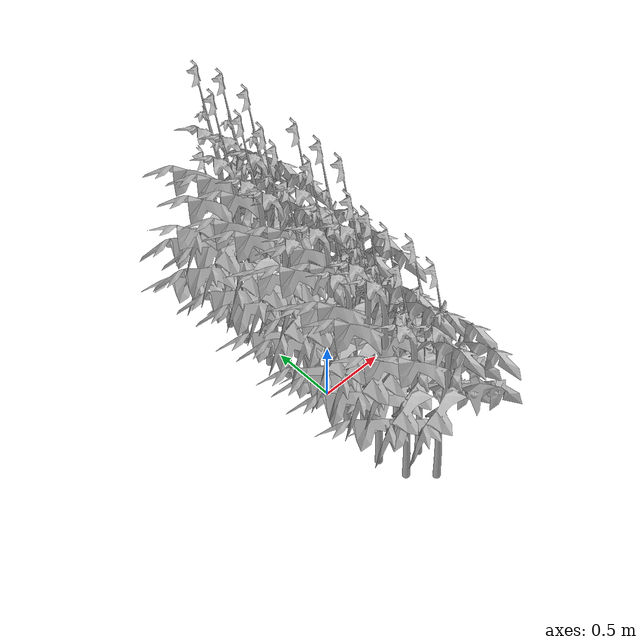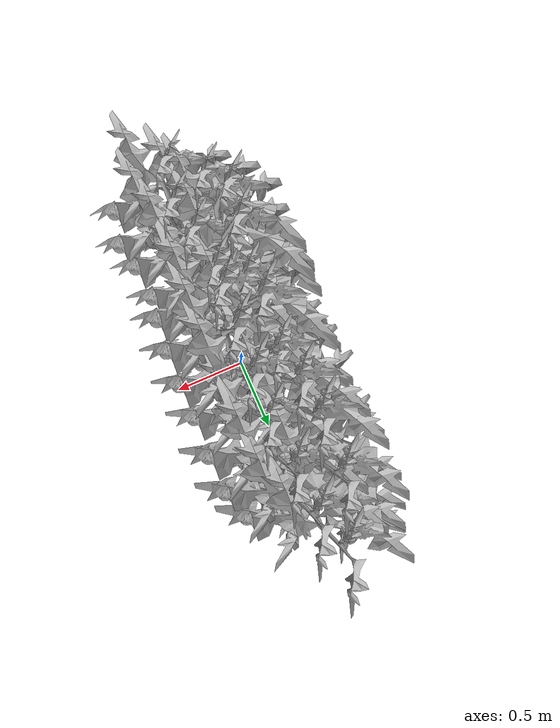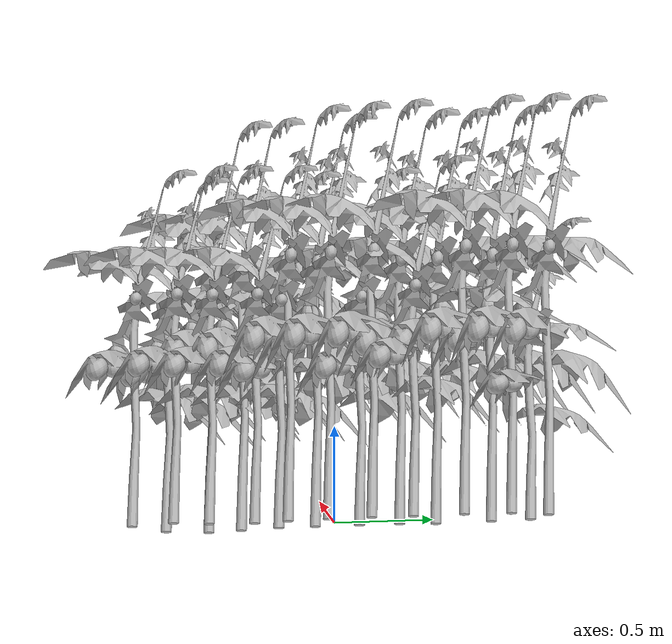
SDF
<?xml version='1.0'?>
<sdf version='1.6'>
  <model name='MIddle_Plant_1'>
    <model name='tomato_plant_big'>
      <static>1</static>
      <link name='link'>
        <collision name='collision'>
          <pose frame=''>0 0 0 1.5708 -0 0</pose>
          <geometry>
            <mesh>
              <scale>0.5 0.6 0.5</scale>
              <uri>model://stick/meshes/stick.dae</uri>
            </mesh>
          </geometry>
        </collision>
        <visual name='visual'>
          <pose frame=''>0 0 0 0 -0 0</pose>
          <geometry>
            <mesh>
              <scale>5e-06 5e-06 7e-06</scale>
              <uri>model://tomato_plant_big/meshes/tomato-plant.dae</uri>
            </mesh>
          </geometry>
        </visual>
      </link>
      <pose frame=''>-0.144318 -0.693607 -0 0 -0 0</pose>
    </model>
    <model name='tomato_plant_big_0'>
      <static>1</static>
      <link name='link'>
        <collision name='collision'>
          <pose frame=''>0 0 0 1.5708 -0 0</pose>
          <geometry>
            <mesh>
              <scale>0.5 0.6 0.5</scale>
              <uri>model://stick/meshes/stick.dae</uri>
            </mesh>
          </geometry>
        </collision>
        <visual name='visual'>
          <pose frame=''>0 0 0 0 -0 0</pose>
          <geometry>
            <mesh>
              <scale>5e-06 5e-06 7e-06</scale>
              <uri>model://tomato_plant_big/meshes/tomato-plant.dae</uri>
            </mesh>
          </geometry>
        </visual>
      </link>
      <pose frame=''>-0.11784 -0.519827 0 0 -0 0</pose>
    </model>
    <model name='tomato_plant_big_1'>
      <static>1</static>
      <link name='link'>
        <collision name='collision'>
          <pose frame=''>0 0 0 1.5708 -0 0</pose>
          <geometry>
            <mesh>
              <scale>0.5 0.6 0.5</scale>
              <uri>model://stick/meshes/stick.dae</uri>
            </mesh>
          </geometry>
        </collision>
        <visual name='visual'>
          <pose frame=''>0 0 0 0 -0 0</pose>
          <geometry>
            <mesh>
              <scale>5e-06 5e-06 7e-06</scale>
              <uri>model://tomato_plant_big/meshes/tomato-plant.dae</uri>
            </mesh>
          </geometry>
        </visual>
      </link>
      <pose frame=''>0.073755 -0.247584 0 0 -0 0</pose>
    </model>
    <model name='tomato_plant_big_10'>
      <static>1</static>
      <link name='link'>
        <collision name='collision'>
          <pose frame=''>0 0 0 1.5708 -0 0</pose>
          <geometry>
            <mesh>
              <scale>0.5 0.6 0.5</scale>
              <uri>model://stick/meshes/stick.dae</uri>
            </mesh>
          </geometry>
        </collision>
        <visual name='visual'>
          <pose frame=''>0 0 0 0 -0 0</pose>
          <geometry>
            <mesh>
              <scale>5e-06 5e-06 7e-06</scale>
              <uri>model://tomato_plant_big/meshes/tomato-plant.dae</uri>
            </mesh>
          </geometry>
        </visual>
      </link>
      <pose frame=''>0.037052 1.07094 0 0 -0 0</pose>
    </model>
    <model name='tomato_plant_big_2'>
      <static>1</static>
      <link name='link'>
        <collision name='collision'>
          <pose frame=''>0 0 0 1.5708 -0 0</pose>
          <geometry>
            <mesh>
              <scale>0.5 0.6 0.5</scale>
              <uri>model://stick/meshes/stick.dae</uri>
            </mesh>
          </geometry>
        </collision>
        <visual name='visual'>
          <pose frame=''>0 0 0 0 -0 0</pose>
          <geometry>
            <mesh>
              <scale>5e-06 5e-06 7e-06</scale>
              <uri>model://tomato_plant_big/meshes/tomato-plant.dae</uri>
            </mesh>
          </geometry>
        </visual>
      </link>
      <pose frame=''>-0.076926 -0.131165 0 0 -0 0</pose>
    </model>
    <model name='tomato_plant_big_3'>
      <static>1</static>
      <link name='link'>
        <collision name='collision'>
          <pose frame=''>0 0 0 1.5708 -0 0</pose>
          <geometry>
            <mesh>
              <scale>0.5 0.6 0.5</scale>
              <uri>model://stick/meshes/stick.dae</uri>
            </mesh>
          </geometry>
        </collision>
        <visual name='visual'>
          <pose frame=''>0 0 0 0 -0 0</pose>
          <geometry>
            <mesh>
              <scale>5e-06 5e-06 7e-06</scale>
              <uri>model://tomato_plant_big/meshes/tomato-plant.dae</uri>
            </mesh>
          </geometry>
        </visual>
      </link>
      <pose frame=''>0.093714 -0.038386 0 0 -0 0</pose>
    </model>
    <model name='tomato_plant_big_4'>
      <static>1</static>
      <link name='link'>
        <collision name='collision'>
          <pose frame=''>0 0 0 1.5708 -0 0</pose>
          <geometry>
            <mesh>
              <scale>0.5 0.6 0.5</scale>
              <uri>model://stick/meshes/stick.dae</uri>
            </mesh>
          </geometry>
        </collision>
        <visual name='visual'>
          <pose frame=''>0 0 0 0 -0 0</pose>
          <geometry>
            <mesh>
              <scale>5e-06 5e-06 7e-06</scale>
              <uri>model://tomato_plant_big/meshes/tomato-plant.dae</uri>
            </mesh>
          </geometry>
        </visual>
      </link>
      <pose frame=''>0.103117 0.184356 0 0 -0 0</pose>
    </model>
    <model name='tomato_plant_big_5'>
      <static>1</static>
      <link name='link'>
        <collision name='collision'>
          <pose frame=''>0 0 0 1.5708 -0 0</pose>
          <geometry>
            <mesh>
              <scale>0.5 0.6 0.5</scale>
              <uri>model://stick/meshes/stick.dae</uri>
            </mesh>
          </geometry>
        </collision>
        <visual name='visual'>
          <pose frame=''>0 0 0 0 -0 0</pose>
          <geometry>
            <mesh>
              <scale>5e-06 5e-06 7e-06</scale>
              <uri>model://tomato_plant_big/meshes/tomato-plant.dae</uri>
            </mesh>
          </geometry>
        </visual>
      </link>
      <pose frame=''>-0.074883 0.301479 0 0 -0 0</pose>
    </model>
    <model name='tomato_plant_big_6'>
      <static>1</static>
      <link name='link'>
        <collision name='collision'>
          <pose frame=''>0 0 0 1.5708 -0 0</pose>
          <geometry>
            <mesh>
              <scale>0.5 0.6 0.5</scale>
              <uri>model://stick/meshes/stick.dae</uri>
            </mesh>
          </geometry>
        </collision>
        <visual name='visual'>
          <pose frame=''>0 0 0 0 -0 0</pose>
          <geometry>
            <mesh>
              <scale>5e-06 5e-06 7e-06</scale>
              <uri>model://tomato_plant_big/meshes/tomato-plant.dae</uri>
            </mesh>
          </geometry>
        </visual>
      </link>
      <pose frame=''>-0.096921 0.484007 0 0 -0 0</pose>
    </model>
    <model name='tomato_plant_big_7'>
      <static>1</static>
      <link name='link'>
        <collision name='collision'>
          <pose frame=''>0 0 0 1.5708 -0 0</pose>
          <geometry>
            <mesh>
              <scale>0.5 0.6 0.5</scale>
              <uri>model://stick/meshes/stick.dae</uri>
            </mesh>
          </geometry>
        </collision>
        <visual name='visual'>
          <pose frame=''>0 0 0 0 -0 0</pose>
          <geometry>
            <mesh>
              <scale>5e-06 5e-06 7e-06</scale>
              <uri>model://tomato_plant_big/meshes/tomato-plant.dae</uri>
            </mesh>
          </geometry>
        </visual>
      </link>
      <pose frame=''>0.107491 0.653976 0 0 -0 0</pose>
    </model>
    <model name='tomato_plant_big_8'>
      <static>1</static>
      <link name='link'>
        <collision name='collision'>
          <pose frame=''>0 0 0 1.5708 -0 0</pose>
          <geometry>
            <mesh>
              <scale>0.5 0.6 0.5</scale>
              <uri>model://stick/meshes/stick.dae</uri>
            </mesh>
          </geometry>
        </collision>
        <visual name='visual'>
          <pose frame=''>0 0 0 0 -0 0</pose>
          <geometry>
            <mesh>
              <scale>5e-06 5e-06 7e-06</scale>
              <uri>model://tomato_plant_big/meshes/tomato-plant.dae</uri>
            </mesh>
          </geometry>
        </visual>
      </link>
      <pose frame=''>-0.07985 0.768549 0 0 -0 0</pose>
    </model>
    <model name='tomato_plant_big_9'>
      <static>1</static>
      <link name='link'>
        <collision name='collision'>
          <pose frame=''>0 0 0 1.5708 -0 0</pose>
          <geometry>
            <mesh>
              <scale>0.5 0.6 0.5</scale>
              <uri>model://stick/meshes/stick.dae</uri>
            </mesh>
          </geometry>
        </collision>
        <visual name='visual'>
          <pose frame=''>0 0 0 0 -0 0</pose>
          <geometry>
            <mesh>
              <scale>5e-06 5e-06 7e-06</scale>
              <uri>model://tomato_plant_big/meshes/tomato-plant.dae</uri>
            </mesh>
          </geometry>
        </visual>
      </link>
      <pose frame=''>0.098361 0.890852 0 0 -0 0</pose>
    </model>
    <model name='tomato_plant_medium'>
      <static>1</static>
      <link name='link'>
        <collision name='collision'>
          <pose frame=''>0 0 0 1.5708 -0 0</pose>
          <geometry>
            <mesh>
              <scale>0.5 0.5 0.5</scale>
              <uri>model://stick/meshes/stick.dae</uri>
            </mesh>
          </geometry>
        </collision>
        <visual name='visual'>
          <pose frame=''>0 0 0 0 -0 0</pose>
          <geometry>
            <mesh>
              <scale>5e-06 5e-06 6e-06</scale>
              <uri>model://tomato_plant_medium/meshes/tomato-plant.dae</uri>
            </mesh>
          </geometry>
        </visual>
      </link>
      <pose frame=''>0.056913 -1.05328 0 0 -0 0</pose>
    </model>
    <model name='tomato_plant_medium_0'>
      <static>1</static>
      <link name='link'>
        <collision name='collision'>
          <pose frame=''>0 0 0 1.5708 -0 0</pose>
          <geometry>
            <mesh>
              <scale>0.5 0.5 0.5</scale>
              <uri>model://stick/meshes/stick.dae</uri>
            </mesh>
          </geometry>
        </collision>
        <visual name='visual'>
          <pose frame=''>0 0 0 0 -0 0</pose>
          <geometry>
            <mesh>
              <scale>5e-06 5e-06 6e-06</scale>
              <uri>model://tomato_plant_medium/meshes/tomato-plant.dae</uri>
            </mesh>
          </geometry>
        </visual>
      </link>
      <pose frame=''>-0.092719 -0.905729 0 0 -0 0</pose>
    </model>
    <model name='tomato_plant_medium_1'>
      <static>1</static>
      <link name='link'>
        <collision name='collision'>
          <pose frame=''>0 0 0 1.5708 -0 0</pose>
          <geometry>
            <mesh>
              <scale>0.5 0.5 0.5</scale>
              <uri>model://stick/meshes/stick.dae</uri>
            </mesh>
          </geometry>
        </collision>
        <visual name='visual'>
          <pose frame=''>0 0 0 0 -0 0</pose>
          <geometry>
            <mesh>
              <scale>5e-06 5e-06 6e-06</scale>
              <uri>model://tomato_plant_medium/meshes/tomato-plant.dae</uri>
            </mesh>
          </geometry>
        </visual>
      </link>
      <pose frame=''>0.108962 -0.829637 0 0 -0 0</pose>
    </model>
    <model name='tomato_plant_medium_2'>
      <static>1</static>
      <link name='link'>
        <collision name='collision'>
          <pose frame=''>0 0 0 1.5708 -0 0</pose>
          <geometry>
            <mesh>
              <scale>0.5 0.5 0.5</scale>
              <uri>model://stick/meshes/stick.dae</uri>
            </mesh>
          </geometry>
        </collision>
        <visual name='visual'>
          <pose frame=''>0 0 0 0 -0 0</pose>
          <geometry>
            <mesh>
              <scale>5e-06 5e-06 6e-06</scale>
              <uri>model://tomato_plant_medium/meshes/tomato-plant.dae</uri>
            </mesh>
          </geometry>
        </visual>
      </link>
      <pose frame=''>0.071216 -0.652507 0 0 -0 0</pose>
    </model>
    <model name='tomato_plant_medium_3'>
      <static>1</static>
      <link name='link'>
        <collision name='collision'>
          <pose frame=''>0 0 0 1.5708 -0 0</pose>
          <geometry>
            <mesh>
              <scale>0.5 0.5 0.5</scale>
              <uri>model://stick/meshes/stick.dae</uri>
            </mesh>
          </geometry>
        </collision>
        <visual name='visual'>
          <pose frame=''>0 0 0 0 -0 0</pose>
          <geometry>
            <mesh>
              <scale>5e-06 5e-06 6e-06</scale>
              <uri>model://tomato_plant_medium/meshes/tomato-plant.dae</uri>
            </mesh>
          </geometry>
        </visual>
      </link>
      <pose frame=''>0.047335 -0.423046 0 0 -0 0</pose>
    </model>
    <model name='tomato_plant_medium_4'>
      <static>1</static>
      <link name='link'>
        <collision name='collision'>
          <pose frame=''>0 0 0 1.5708 -0 0</pose>
          <geometry>
            <mesh>
              <scale>0.5 0.5 0.5</scale>
              <uri>model://stick/meshes/stick.dae</uri>
            </mesh>
          </geometry>
        </collision>
        <visual name='visual'>
          <pose frame=''>0 0 0 0 -0 0</pose>
          <geometry>
            <mesh>
              <scale>5e-06 5e-06 6e-06</scale>
              <uri>model://tomato_plant_medium/meshes/tomato-plant.dae</uri>
            </mesh>
          </geometry>
        </visual>
      </link>
      <pose frame=''>-0.081012 -0.320324 0 0 -0 0</pose>
    </model>
    <model name='tomato_plant_medium_5'>
      <static>1</static>
      <link name='link'>
        <collision name='collision'>
          <pose frame=''>0 0 0 1.5708 -0 0</pose>
          <geometry>
            <mesh>
              <scale>0.5 0.5 0.5</scale>
              <uri>model://stick/meshes/stick.dae</uri>
            </mesh>
          </geometry>
        </collision>
        <visual name='visual'>
          <pose frame=''>0 0 0 0 -0 0</pose>
          <geometry>
            <mesh>
              <scale>5e-06 5e-06 6e-06</scale>
              <uri>model://tomato_plant_medium/meshes/tomato-plant.dae</uri>
            </mesh>
          </geometry>
        </visual>
      </link>
      <pose frame=''>-0.07452 0.095988 0 0 -0 0</pose>
    </model>
    <model name='tomato_plant_medium_6'>
      <static>1</static>
      <link name='link'>
        <collision name='collision'>
          <pose frame=''>0 0 0 1.5708 -0 0</pose>
          <geometry>
            <mesh>
              <scale>0.5 0.5 0.5</scale>
              <uri>model://stick/meshes/stick.dae</uri>
            </mesh>
          </geometry>
        </collision>
        <visual name='visual'>
          <pose frame=''>0 0 0 0 -0 0</pose>
          <geometry>
            <mesh>
              <scale>5e-06 5e-06 6e-06</scale>
              <uri>model://tomato_plant_medium/meshes/tomato-plant.dae</uri>
            </mesh>
          </geometry>
        </visual>
      </link>
      <pose frame=''>0.101424 0.395443 0 0 -0 0</pose>
    </model>
    <model name='tomato_plant_small'>
      <static>1</static>
      <link name='link'>
        <collision name='collision'>
          <pose frame=''>0 0 0 1.5708 -0 0</pose>
          <geometry>
            <mesh>
              <scale>0.5 0.45 0.5</scale>
              <uri>model://stick/meshes/stick.dae</uri>
            </mesh>
          </geometry>
        </collision>
        <visual name='visual'>
          <pose frame=''>0 0 0 0 -0 0</pose>
          <geometry>
            <mesh>
              <scale>5e-06 5e-06 5e-06</scale>
              <uri>model://tomato_plant_small/meshes/tomato-plant.dae</uri>
            </mesh>
          </geometry>
        </visual>
      </link>
      <pose frame=''>-0.060351 0.969512 0 0 -0 0</pose>
    </model>
    <static>0</static>
    <allow_auto_disable>1</allow_auto_disable>
  </model>
</sdf>
